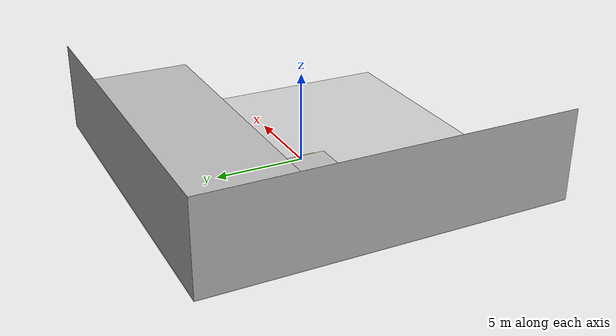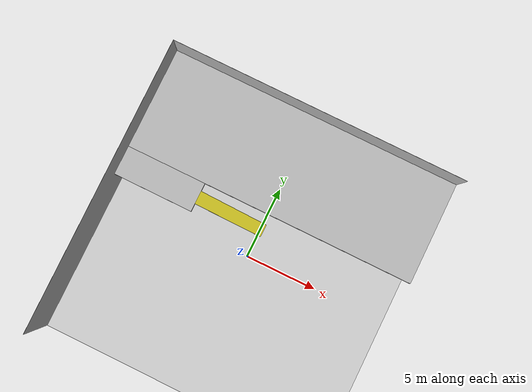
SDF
<?xml version="1.0"?>
<sdf version="1.6">
  <world name="default">
    <include>
      <uri>model://sun</uri>
    </include>

    <include>
      <uri>model://stairs</uri>
      <name>stairs</name>
      <pose>0 2.0 0 0 0 -1.570796</pose>
    </include>

    <model name='warehouse'>
      <static>1</static>
      <link name='ground_floor'>
        <pose frame=''>0 0 0 0 -0 0</pose>
        <collision name='ground_floor_collision'>
          <geometry>
            <plane>
              <normal>0 0 1</normal>
              <size>20 20</size>
            </plane>
          </geometry>
        </collision>
        <visual name='ground_floor_visual'>
          <geometry>
            <plane>
              <normal>0 0 1</normal>
              <size>20 20</size>
            </plane>
          </geometry>
          <material>
            <script>
              <uri>model://floor/materials/scripts</uri>
              <uri>model://floor/materials/textures</uri>
              <name>floor/Image</name>
            </script>
          </material>
        </visual>
      </link>
      <link name='top_floor'>
        <pose frame=''>0 6.5 2.55 0 -0 0</pose>
        <collision name='top_floor_collision'>
          <geometry>
            <box>
              <size>20 7 0.3</size>
            </box>
          </geometry>
        </collision>
        <collision name='top_floor_collision_1'>
          <pose>-7.25 -4.5 0.001 0 0 0</pose>
          <geometry>
            <box>
              <size>5.5 2 0.3</size>
            </box>
          </geometry>
        </collision>
        <visual name='top_floor_visual'>
          <geometry>
            <box>
              <size>20 7 0.3</size>
            </box>
          </geometry>
          <material>
            <script>
              <uri>model://floor/materials/scripts</uri>
              <uri>model://floor/materials/textures</uri>
              <name>floor/Image</name>
            </script>
          </material>
        </visual>
        <visual name='top_floor_visual_1'>
          <pose>-7.25 -4.5 0.001 0 0 0</pose>
          <geometry>
            <box>
              <size>5.5 2 0.3</size>
            </box>
          </geometry>
          <material>
            <script>
              <uri>model://floor/materials/scripts</uri>
              <uri>model://floor/materials/textures</uri>
              <name>floor/Image</name>
            </script>
          </material>
        </visual>
      </link>
      <link name='walls'>
        <visual name='front_wall'>
          <pose frame=''>-10 0 2.5 0 1.570796 0</pose>
          <geometry>
            <plane>
              <normal>0 0 1</normal>
              <size>5 20</size>
            </plane>
          </geometry>
        </visual>
        <visual name='right_wall'>
          <pose frame=''>0 10 2.5 0 1.570796 -1.570796</pose>
          <geometry>
            <plane>
              <normal>0 0 1</normal>
              <size>5 20</size>
            </plane>
          </geometry>
        </visual>
      </link>
    </model>
  </world>
</sdf>

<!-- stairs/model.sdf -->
<sdf version='1.7'>
  <model name='stairs'>
    <static>true</static>
    <link name='base_link'>
      <inertial>
        <pose>-1.5939E-14 -3.0532 1.8301 0 0 0</pose>
        <mass>926.96</mass>
        <inertia>
          <ixx>5747.3</ixx>
          <ixy>-3.7391E-14</ixy>
          <ixz>-2.1153E-14</ixz>
          <iyy>611.9</iyy>
          <iyz>2485.9</iyz>
          <izz>4480.6</izz>
        </inertia>
      </inertial>
      <collision name='base_link_collision'>
        <pose>0 0 0 0 -0 0</pose>
        <geometry>
          <mesh>
            <scale>0.75 0.75 0.75</scale>
            <uri>model://stairs/meshes/collision_1.STL</uri>
          </mesh>
        </geometry>
      </collision>
      <visual name='base_link_visual'>
        <pose>0 0 0 0 -0 0</pose>
        <geometry>
          <mesh>
            <scale>0.75 0.75 0.75</scale>
            <uri>model://stairs/meshes/visual.STL</uri>
          </mesh>
        </geometry>
        <material>
          <script>
            <name>Gazebo/Yellow</name>
            <uri>file://media/materials/scripts/gazebo.material</uri>
          </script>
        </material>
      </visual>
    </link>
  </model>
</sdf>
